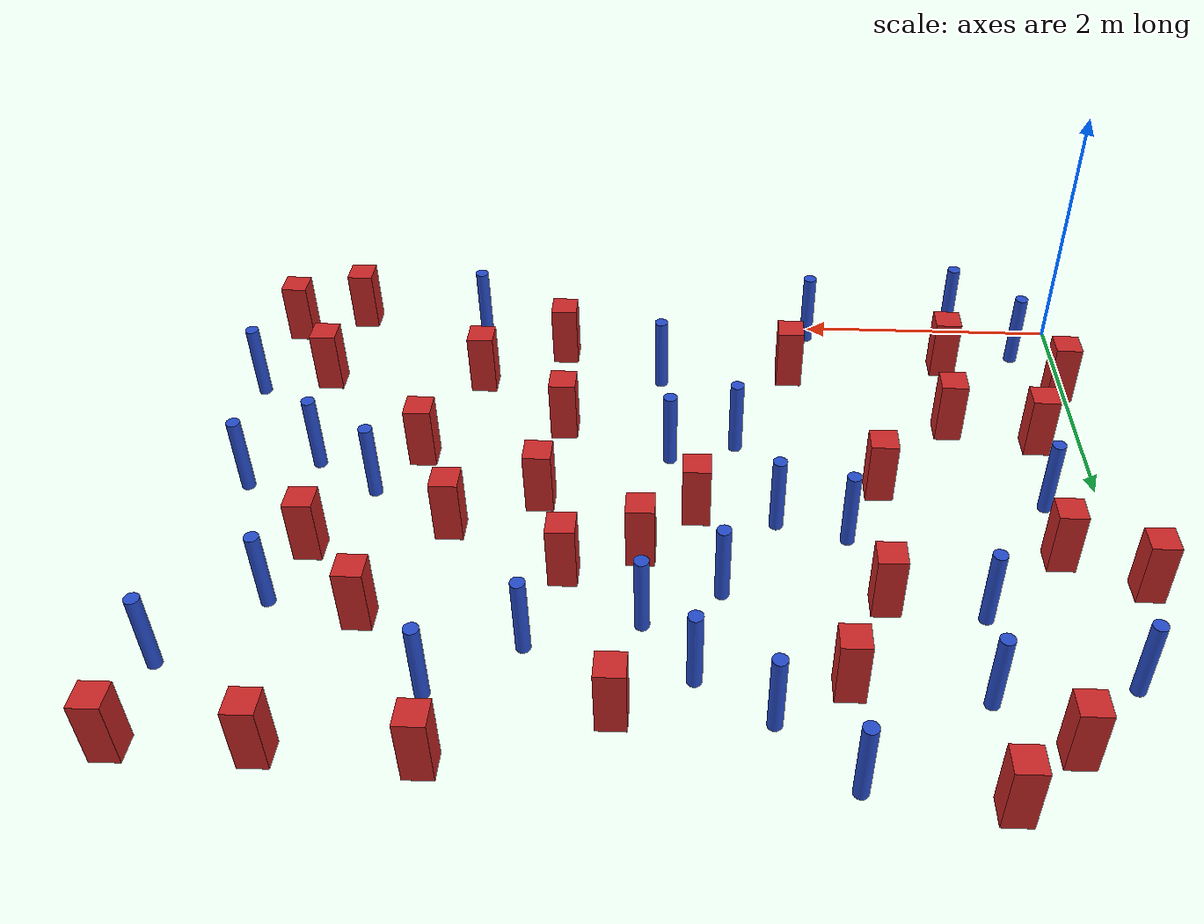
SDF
<sdf version="1.6">
 <model name="dense_46">
  <model name="pole_obstacle5">
   <static>true</static>
   <pose>4.59534983263 4.0228984966 7.38925637345e-09 -8.47170692797e-08 1.24976764805e-08 -1.74513093031e-07</pose>
   <link name="link">
    <pose>0 0 0.3 0 -0 0</pose>
    <inertial>
     <mass>1</mass>
     <inertia><ixx>0.145833</ixx><ixy>0</ixy><ixz>0</ixz><iyy>0.145833</iyy><iyz>0</iyz><izz>0.125</izz></inertia>
    </inertial>
    <collision name="collision">
     <geometry><cylinder><radius>0.05</radius><length>.6</length></cylinder></geometry>
    </collision>
    <visual name="visual">
     <geometry><cylinder><radius>0.05</radius><length>.6</length></cylinder></geometry>
     <material>
      <script><name>Gazebo/Blue</name><uri>file://media/materials/scripts/gazebo.material</uri></script>
     </material>
    </visual>
   </link>
  </model>
  <model name="square_post_obstacle12">
   <static>true</static>
   <pose>1.9486642513 3.89404540649 1.91545236811e-07 -7.35059704564e-06 1.12565212e-07 2.39332434364e-05</pose>
   <link name="link">
    <pose>0 0 0.25 0 -0 0</pose>
    <inertial>
     <mass>100</mass>
     <inertia>
      <ixx>0.166667</ixx>
      <ixy>0</ixy>
      <ixz>0</ixz>
      <iyy>0.166667</iyy>
      <iyz>0</iyz>
      <izz>0.166667</izz>
     </inertia>
    </inertial>
    <collision name="collision"><geometry><box><size>.2 .2 .5</size></box></geometry></collision>
    <visual name="visual">
     <geometry><box><size>.2 .2 .5</size></box></geometry>
     <material>
      <script><name>Gazebo/Red</name><uri>file://media/materials/scripts/gazebo.material</uri></script>
     </material>
    </visual>
   </link>
  </model>
  <model name="square_post_obstacle17">
   <static>true</static>
   <pose>5.48721667953 4.50802966469 1.91545236811e-07 -7.35059704564e-06 1.12565212e-07 2.39332434364e-05</pose>
   <link name="link">
    <pose>0 0 0.25 0 -0 0</pose>
    <inertial>
     <mass>100</mass>
     <inertia>
      <ixx>0.166667</ixx>
      <ixy>0</ixy>
      <ixz>0</ixz>
      <iyy>0.166667</iyy>
      <iyz>0</iyz>
      <izz>0.166667</izz>
     </inertia>
    </inertial>
    <collision name="collision"><geometry><box><size>.2 .2 .5</size></box></geometry></collision>
    <visual name="visual">
     <geometry><box><size>.2 .2 .5</size></box></geometry>
     <material>
      <script><name>Gazebo/Red</name><uri>file://media/materials/scripts/gazebo.material</uri></script>
     </material>
    </visual>
   </link>
  </model>
  <model name="square_post_obstacle18">
   <static>true</static>
   <pose>4.50338744561 4.55315479538 1.91545236811e-07 -7.35059704564e-06 1.12565212e-07 2.39332434364e-05</pose>
   <link name="link">
    <pose>0 0 0.25 0 -0 0</pose>
    <inertial>
     <mass>100</mass>
     <inertia>
      <ixx>0.166667</ixx>
      <ixy>0</ixy>
      <ixz>0</ixz>
      <iyy>0.166667</iyy>
      <iyz>0</iyz>
      <izz>0.166667</izz>
     </inertia>
    </inertial>
    <collision name="collision"><geometry><box><size>.2 .2 .5</size></box></geometry></collision>
    <visual name="visual">
     <geometry><box><size>.2 .2 .5</size></box></geometry>
     <material>
      <script><name>Gazebo/Red</name><uri>file://media/materials/scripts/gazebo.material</uri></script>
     </material>
    </visual>
   </link>
  </model>
  <model name="square_post_obstacle35">
   <static>true</static>
   <pose>0.418649851266 2.72194955402 1.91545236811e-07 -7.35059704564e-06 1.12565212e-07 2.39332434364e-05</pose>
   <link name="link">
    <pose>0 0 0.25 0 -0 0</pose>
    <inertial>
     <mass>100</mass>
     <inertia>
      <ixx>0.166667</ixx>
      <ixy>0</ixy>
      <ixz>0</ixz>
      <iyy>0.166667</iyy>
      <iyz>0</iyz>
      <izz>0.166667</izz>
     </inertia>
    </inertial>
    <collision name="collision"><geometry><box><size>.2 .2 .5</size></box></geometry></collision>
    <visual name="visual">
     <geometry><box><size>.2 .2 .5</size></box></geometry>
     <material>
      <script><name>Gazebo/Red</name><uri>file://media/materials/scripts/gazebo.material</uri></script>
     </material>
    </visual>
   </link>
  </model>
  <model name="pole_obstacle34">
   <static>true</static>
   <pose>0.150805727323 3.83194748476 7.38925637345e-09 -8.47170692792e-08 1.24976764391e-08 -1.74513093041e-07</pose>
   <link name="link">
    <pose>0 0 0.3 0 -0 0</pose>
    <inertial>
     <mass>1</mass>
     <inertia><ixx>0.145833</ixx><ixy>0</ixy><ixz>0</ixz><iyy>0.145833</iyy><iyz>0</iyz><izz>0.125</izz></inertia>
    </inertial>
    <collision name="collision">
     <geometry><cylinder><radius>0.05</radius><length>.6</length></cylinder></geometry>
    </collision>
    <visual name="visual">
     <geometry><cylinder><radius>0.05</radius><length>.6</length></cylinder></geometry>
     <material>
      <script><name>Gazebo/Blue</name><uri>file://media/materials/scripts/gazebo.material</uri></script>
     </material>
    </visual>
   </link>
  </model>
  <model name="pole_obstacle44">
   <static>true</static>
   <pose>2.02675476743 0.130925914596 7.38925637345e-09 -8.471706928e-08 1.2497676515e-08 -1.74513093013e-07</pose>
   <link name="link">
    <pose>0 0 0.3 0 -0 0</pose>
    <inertial>
     <mass>1</mass>
     <inertia><ixx>0.145833</ixx><ixy>0</ixy><ixz>0</ixz><iyy>0.145833</iyy><iyz>0</iyz><izz>0.125</izz></inertia>
    </inertial>
    <collision name="collision">
     <geometry><cylinder><radius>0.05</radius><length>.6</length></cylinder></geometry>
    </collision>
    <visual name="visual">
     <geometry><cylinder><radius>0.05</radius><length>.6</length></cylinder></geometry>
     <material>
      <script><name>Gazebo/Blue</name><uri>file://media/materials/scripts/gazebo.material</uri></script>
     </material>
    </visual>
   </link>
  </model>
  <model name="square_post_obstacle46">
   <static>true</static>
   <pose>0.0517861486975 0.834442177114 1.91545236811e-07 -7.35059704564e-06 1.12565212e-07 2.39332434364e-05</pose>
   <link name="link">
    <pose>0 0 0.25 0 -0 0</pose>
    <inertial>
     <mass>100</mass>
     <inertia>
      <ixx>0.166667</ixx>
      <ixy>0</ixy>
      <ixz>0</ixz>
      <iyy>0.166667</iyy>
      <iyz>0</iyz>
      <izz>0.166667</izz>
     </inertia>
    </inertial>
    <collision name="collision"><geometry><box><size>.2 .2 .5</size></box></geometry></collision>
    <visual name="visual">
     <geometry><box><size>.2 .2 .5</size></box></geometry>
     <material>
      <script><name>Gazebo/Red</name><uri>file://media/materials/scripts/gazebo.material</uri></script>
     </material>
    </visual>
   </link>
  </model>
  <model name="square_post_obstacle51">
   <static>true</static>
   <pose>1.59730750345 2.04922102669 1.91545236811e-07 -7.35059704564e-06 1.12565212e-07 2.39332434364e-05</pose>
   <link name="link">
    <pose>0 0 0.25 0 -0 0</pose>
    <inertial>
     <mass>100</mass>
     <inertia>
      <ixx>0.166667</ixx>
      <ixy>0</ixy>
      <ixz>0</ixz>
      <iyy>0.166667</iyy>
      <iyz>0</iyz>
      <izz>0.166667</izz>
     </inertia>
    </inertial>
    <collision name="collision"><geometry><box><size>.2 .2 .5</size></box></geometry></collision>
    <visual name="visual">
     <geometry><box><size>.2 .2 .5</size></box></geometry>
     <material>
      <script><name>Gazebo/Red</name><uri>file://media/materials/scripts/gazebo.material</uri></script>
     </material>
    </visual>
   </link>
  </model>
  <model name="square_post_obstacle52">
   <static>true</static>
   <pose>1.00465909613 1.33921879013 1.91545236811e-07 -7.35059704564e-06 1.12565212e-07 2.39332434364e-05</pose>
   <link name="link">
    <pose>0 0 0.25 0 -0 0</pose>
    <inertial>
     <mass>100</mass>
     <inertia>
      <ixx>0.166667</ixx>
      <ixy>0</ixy>
      <ixz>0</ixz>
      <iyy>0.166667</iyy>
      <iyz>0</iyz>
      <izz>0.166667</izz>
     </inertia>
    </inertial>
    <collision name="collision"><geometry><box><size>.2 .2 .5</size></box></geometry></collision>
    <visual name="visual">
     <geometry><box><size>.2 .2 .5</size></box></geometry>
     <material>
      <script><name>Gazebo/Red</name><uri>file://media/materials/scripts/gazebo.material</uri></script>
     </material>
    </visual>
   </link>
  </model>
  <model name="pole_obstacle54">
   <static>true</static>
   <pose>2.73887575974 3.12009232815 7.38925637345e-09 -8.47170692798e-08 1.24976764939e-08 -1.74513093025e-07</pose>
   <link name="link">
    <pose>0 0 0.3 0 -0 0</pose>
    <inertial>
     <mass>1</mass>
     <inertia><ixx>0.145833</ixx><ixy>0</ixy><ixz>0</ixz><iyy>0.145833</iyy><iyz>0</iyz><izz>0.125</izz></inertia>
    </inertial>
    <collision name="collision">
     <geometry><cylinder><radius>0.05</radius><length>.6</length></cylinder></geometry>
    </collision>
    <visual name="visual">
     <geometry><cylinder><radius>0.05</radius><length>.6</length></cylinder></geometry>
     <material>
      <script><name>Gazebo/Blue</name><uri>file://media/materials/scripts/gazebo.material</uri></script>
     </material>
    </visual>
   </link>
  </model>
  <model name="square_post_obstacle69">
   <static>true</static>
   <pose>1.07616729477 4.73868065113 1.91545236811e-07 -7.35059704564e-06 1.12565212e-07 2.39332434364e-05</pose>
   <link name="link">
    <pose>0 0 0.25 0 -0 0</pose>
    <inertial>
     <mass>100</mass>
     <inertia>
      <ixx>0.166667</ixx>
      <ixy>0</ixy>
      <ixz>0</ixz>
      <iyy>0.166667</iyy>
      <iyz>0</iyz>
      <izz>0.166667</izz>
     </inertia>
    </inertial>
    <collision name="collision"><geometry><box><size>.2 .2 .5</size></box></geometry></collision>
    <visual name="visual">
     <geometry><box><size>.2 .2 .5</size></box></geometry>
     <material>
      <script><name>Gazebo/Red</name><uri>file://media/materials/scripts/gazebo.material</uri></script>
     </material>
    </visual>
   </link>
  </model>
  <model name="pole_obstacle74">
   <static>true</static>
   <pose>3.25864597976 3.4138214126 7.38925637345e-09 -8.47170692798e-08 1.24976764939e-08 -1.74513093025e-07</pose>
   <link name="link">
    <pose>0 0 0.3 0 -0 0</pose>
    <inertial>
     <mass>1</mass>
     <inertia><ixx>0.145833</ixx><ixy>0</ixy><ixz>0</ixz><iyy>0.145833</iyy><iyz>0</iyz><izz>0.125</izz></inertia>
    </inertial>
    <collision name="collision">
     <geometry><cylinder><radius>0.05</radius><length>.6</length></cylinder></geometry>
    </collision>
    <visual name="visual">
     <geometry><cylinder><radius>0.05</radius><length>.6</length></cylinder></geometry>
     <material>
      <script><name>Gazebo/Blue</name><uri>file://media/materials/scripts/gazebo.material</uri></script>
     </material>
    </visual>
   </link>
  </model>
  <model name="pole_obstacle83">
   <static>true</static>
   <pose>4.7419789741 0.147731783757 7.38925637345e-09 -8.47170692801e-08 1.24976765186e-08 -1.74513093012e-07</pose>
   <link name="link">
    <pose>0 0 0.3 0 -0 0</pose>
    <inertial>
     <mass>1</mass>
     <inertia><ixx>0.145833</ixx><ixy>0</ixy><ixz>0</ixz><iyy>0.145833</iyy><iyz>0</iyz><izz>0.125</izz></inertia>
    </inertial>
    <collision name="collision">
     <geometry><cylinder><radius>0.05</radius><length>.6</length></cylinder></geometry>
    </collision>
    <visual name="visual">
     <geometry><cylinder><radius>0.05</radius><length>.6</length></cylinder></geometry>
     <material>
      <script><name>Gazebo/Blue</name><uri>file://media/materials/scripts/gazebo.material</uri></script>
     </material>
    </visual>
   </link>
  </model>
  <model name="pole_obstacle87">
   <static>true</static>
   <pose>1.85846566971 2.57275079863 7.38925637345e-09 -8.47170692799e-08 1.24976765053e-08 -1.74513093017e-07</pose>
   <link name="link">
    <pose>0 0 0.3 0 -0 0</pose>
    <inertial>
     <mass>1</mass>
     <inertia><ixx>0.145833</ixx><ixy>0</ixy><ixz>0</ixz><iyy>0.145833</iyy><iyz>0</iyz><izz>0.125</izz></inertia>
    </inertial>
    <collision name="collision">
     <geometry><cylinder><radius>0.05</radius><length>.6</length></cylinder></geometry>
    </collision>
    <visual name="visual">
     <geometry><cylinder><radius>0.05</radius><length>.6</length></cylinder></geometry>
     <material>
      <script><name>Gazebo/Blue</name><uri>file://media/materials/scripts/gazebo.material</uri></script>
     </material>
    </visual>
   </link>
  </model>
  <model name="pole_obstacle93">
   <static>true</static>
   <pose>0.409562089212 2.18612553428 7.38925637345e-09 -8.471706928e-08 1.24976765084e-08 -1.74513093017e-07</pose>
   <link name="link">
    <pose>0 0 0.3 0 -0 0</pose>
    <inertial>
     <mass>1</mass>
     <inertia><ixx>0.145833</ixx><ixy>0</ixy><ixz>0</ixz><iyy>0.145833</iyy><iyz>0</iyz><izz>0.125</izz></inertia>
    </inertial>
    <collision name="collision">
     <geometry><cylinder><radius>0.05</radius><length>.6</length></cylinder></geometry>
    </collision>
    <visual name="visual">
     <geometry><cylinder><radius>0.05</radius><length>.6</length></cylinder></geometry>
     <material>
      <script><name>Gazebo/Blue</name><uri>file://media/materials/scripts/gazebo.material</uri></script>
     </material>
    </visual>
   </link>
  </model>
  <model name="pole_obstacle95">
   <static>true</static>
   <pose>0.822893340495 -0.054897305519 7.38925637345e-09 -8.471706928e-08 1.24976765141e-08 -1.74513093012e-07</pose>
   <link name="link">
    <pose>0 0 0.3 0 -0 0</pose>
    <inertial>
     <mass>1</mass>
     <inertia><ixx>0.145833</ixx><ixy>0</ixy><ixz>0</ixz><iyy>0.145833</iyy><iyz>0</iyz><izz>0.125</izz></inertia>
    </inertial>
    <collision name="collision">
     <geometry><cylinder><radius>0.05</radius><length>.6</length></cylinder></geometry>
    </collision>
    <visual name="visual">
     <geometry><cylinder><radius>0.05</radius><length>.6</length></cylinder></geometry>
     <material>
      <script><name>Gazebo/Blue</name><uri>file://media/materials/scripts/gazebo.material</uri></script>
     </material>
    </visual>
   </link>
  </model>
  <model name="square_post_obstacle92">
   <static>true</static>
   <pose>5.8972531947 0.875745982359 1.91545236811e-07 -7.35059704564e-06 1.12565212e-07 2.39332434364e-05</pose>
   <link name="link">
    <pose>0 0 0.25 0 -0 0</pose>
    <inertial>
     <mass>100</mass>
     <inertia>
      <ixx>0.166667</ixx>
      <ixy>0</ixy>
      <ixz>0</ixz>
      <iyy>0.166667</iyy>
      <iyz>0</iyz>
      <izz>0.166667</izz>
     </inertia>
    </inertial>
    <collision name="collision"><geometry><box><size>.2 .2 .5</size></box></geometry></collision>
    <visual name="visual">
     <geometry><box><size>.2 .2 .5</size></box></geometry>
     <material>
      <script><name>Gazebo/Red</name><uri>file://media/materials/scripts/gazebo.material</uri></script>
     </material>
    </visual>
   </link>
  </model>
  <model name="pole_obstacle107">
   <static>true</static>
   <pose>1.93582935623 4.63736850619 7.38925637345e-09 -8.47170692799e-08 1.24976765033e-08 -1.74513093018e-07</pose>
   <link name="link">
    <pose>0 0 0.3 0 -0 0</pose>
    <inertial>
     <mass>1</mass>
     <inertia><ixx>0.145833</ixx><ixy>0</ixy><ixz>0</ixz><iyy>0.145833</iyy><iyz>0</iyz><izz>0.125</izz></inertia>
    </inertial>
    <collision name="collision">
     <geometry><cylinder><radius>0.05</radius><length>.6</length></cylinder></geometry>
    </collision>
    <visual name="visual">
     <geometry><cylinder><radius>0.05</radius><length>.6</length></cylinder></geometry>
     <material>
      <script><name>Gazebo/Blue</name><uri>file://media/materials/scripts/gazebo.material</uri></script>
     </material>
    </visual>
   </link>
  </model>
  <model name="pole_obstacle108">
   <static>true</static>
   <pose>6.33394868923 3.84851165685 7.38925637345e-09 -8.47170692798e-08 1.24976764937e-08 -1.74513093023e-07</pose>
   <link name="link">
    <pose>0 0 0.3 0 -0 0</pose>
    <inertial>
     <mass>1</mass>
     <inertia><ixx>0.145833</ixx><ixy>0</ixy><ixz>0</ixz><iyy>0.145833</iyy><iyz>0</iyz><izz>0.125</izz></inertia>
    </inertial>
    <collision name="collision">
     <geometry><cylinder><radius>0.05</radius><length>.6</length></cylinder></geometry>
    </collision>
    <visual name="visual">
     <geometry><cylinder><radius>0.05</radius><length>.6</length></cylinder></geometry>
     <material>
      <script><name>Gazebo/Blue</name><uri>file://media/materials/scripts/gazebo.material</uri></script>
     </material>
    </visual>
   </link>
  </model>
  <model name="square_post_obstacle97">
   <static>true</static>
   <pose>3.40601405111 4.16479973151 1.91545236811e-07 -7.35059704564e-06 1.12565212e-07 2.39332434364e-05</pose>
   <link name="link">
    <pose>0 0 0.25 0 -0 0</pose>
    <inertial>
     <mass>100</mass>
     <inertia>
      <ixx>0.166667</ixx>
      <ixy>0</ixy>
      <ixz>0</ixz>
      <iyy>0.166667</iyy>
      <iyz>0</iyz>
      <izz>0.166667</izz>
     </inertia>
    </inertial>
    <collision name="collision"><geometry><box><size>.2 .2 .5</size></box></geometry></collision>
    <visual name="visual">
     <geometry><box><size>.2 .2 .5</size></box></geometry>
     <material>
      <script><name>Gazebo/Red</name><uri>file://media/materials/scripts/gazebo.material</uri></script>
     </material>
    </visual>
   </link>
  </model>
  <model name="square_post_obstacle102">
   <static>true</static>
   <pose>-0.11619873784 2.98727127344 1.91545236811e-07 -7.35059704564e-06 1.12565212e-07 2.39332434364e-05</pose>
   <link name="link">
    <pose>0 0 0.25 0 -0 0</pose>
    <inertial>
     <mass>100</mass>
     <inertia>
      <ixx>0.166667</ixx>
      <ixy>0</ixy>
      <ixz>0</ixz>
      <iyy>0.166667</iyy>
      <iyz>0</iyz>
      <izz>0.166667</izz>
     </inertia>
    </inertial>
    <collision name="collision"><geometry><box><size>.2 .2 .5</size></box></geometry></collision>
    <visual name="visual">
     <geometry><box><size>.2 .2 .5</size></box></geometry>
     <material>
      <script><name>Gazebo/Red</name><uri>file://media/materials/scripts/gazebo.material</uri></script>
     </material>
    </visual>
   </link>
  </model>
  <model name="pole_obstacle118">
   <static>true</static>
   <pose>3.22946974129 0.804600885479 7.38925637345e-09 -8.471706928e-08 1.24976765177e-08 -1.74513093012e-07</pose>
   <link name="link">
    <pose>0 0 0.3 0 -0 0</pose>
    <inertial>
     <mass>1</mass>
     <inertia><ixx>0.145833</ixx><ixy>0</ixy><ixz>0</ixz><iyy>0.145833</iyy><iyz>0</iyz><izz>0.125</izz></inertia>
    </inertial>
    <collision name="collision">
     <geometry><cylinder><radius>0.05</radius><length>.6</length></cylinder></geometry>
    </collision>
    <visual name="visual">
     <geometry><cylinder><radius>0.05</radius><length>.6</length></cylinder></geometry>
     <material>
      <script><name>Gazebo/Blue</name><uri>file://media/materials/scripts/gazebo.material</uri></script>
     </material>
    </visual>
   </link>
  </model>
  <model name="square_post_obstacle106">
   <static>true</static>
   <pose>4.04915722472 2.25567903911 1.91545236811e-07 -7.35059704564e-06 1.12565212e-07 2.39332434364e-05</pose>
   <link name="link">
    <pose>0 0 0.25 0 -0 0</pose>
    <inertial>
     <mass>100</mass>
     <inertia>
      <ixx>0.166667</ixx>
      <ixy>0</ixy>
      <ixz>0</ixz>
      <iyy>0.166667</iyy>
      <iyz>0</iyz>
      <izz>0.166667</izz>
     </inertia>
    </inertial>
    <collision name="collision"><geometry><box><size>.2 .2 .5</size></box></geometry></collision>
    <visual name="visual">
     <geometry><box><size>.2 .2 .5</size></box></geometry>
     <material>
      <script><name>Gazebo/Red</name><uri>file://media/materials/scripts/gazebo.material</uri></script>
     </material>
    </visual>
   </link>
  </model>
  <model name="square_post_obstacle112">
   <static>true</static>
   <pose>0.940830096935 0.526703319164 1.91545236811e-07 -7.35059704564e-06 1.12565212e-07 2.39332434364e-05</pose>
   <link name="link">
    <pose>0 0 0.25 0 -0 0</pose>
    <inertial>
     <mass>100</mass>
     <inertia>
      <ixx>0.166667</ixx>
      <ixy>0</ixy>
      <ixz>0</ixz>
      <iyy>0.166667</iyy>
      <iyz>0</iyz>
      <izz>0.166667</izz>
     </inertia>
    </inertial>
    <collision name="collision"><geometry><box><size>.2 .2 .5</size></box></geometry></collision>
    <visual name="visual">
     <geometry><box><size>.2 .2 .5</size></box></geometry>
     <material>
      <script><name>Gazebo/Red</name><uri>file://media/materials/scripts/gazebo.material</uri></script>
     </material>
    </visual>
   </link>
  </model>
  <model name="square_post_obstacle114">
   <static>true</static>
   <pose>2.9229751349 2.36016339598 1.91545236811e-07 -7.35059704564e-06 1.12565212e-07 2.39332434364e-05</pose>
   <link name="link">
    <pose>0 0 0.25 0 -0 0</pose>
    <inertial>
     <mass>100</mass>
     <inertia>
      <ixx>0.166667</ixx>
      <ixy>0</ixy>
      <ixz>0</ixz>
      <iyy>0.166667</iyy>
      <iyz>0</iyz>
      <izz>0.166667</izz>
     </inertia>
    </inertial>
    <collision name="collision"><geometry><box><size>.2 .2 .5</size></box></geometry></collision>
    <visual name="visual">
     <geometry><box><size>.2 .2 .5</size></box></geometry>
     <material>
      <script><name>Gazebo/Red</name><uri>file://media/materials/scripts/gazebo.material</uri></script>
     </material>
    </visual>
   </link>
  </model>
  <model name="square_post_obstacle119">
   <static>true</static>
   <pose>4.65369916464 2.56672874274 1.91545236811e-07 -7.35059704564e-06 1.12565212e-07 2.39332434364e-05</pose>
   <link name="link">
    <pose>0 0 0.25 0 -0 0</pose>
    <inertial>
     <mass>100</mass>
     <inertia>
      <ixx>0.166667</ixx>
      <ixy>0</ixy>
      <ixz>0</ixz>
      <iyy>0.166667</iyy>
      <iyz>0</iyz>
      <izz>0.166667</izz>
     </inertia>
    </inertial>
    <collision name="collision"><geometry><box><size>.2 .2 .5</size></box></geometry></collision>
    <visual name="visual">
     <geometry><box><size>.2 .2 .5</size></box></geometry>
     <material>
      <script><name>Gazebo/Red</name><uri>file://media/materials/scripts/gazebo.material</uri></script>
     </material>
    </visual>
   </link>
  </model>
  <model name="square_post_obstacle124">
   <static>true</static>
   <pose>2.20223118545 0.701143997711 1.91545236811e-07 -7.35059704564e-06 1.12565212e-07 2.39332434364e-05</pose>
   <link name="link">
    <pose>0 0 0.25 0 -0 0</pose>
    <inertial>
     <mass>100</mass>
     <inertia>
      <ixx>0.166667</ixx>
      <ixy>0</ixy>
      <ixz>0</ixz>
      <iyy>0.166667</iyy>
      <iyz>0</iyz>
      <izz>0.166667</izz>
     </inertia>
    </inertial>
    <collision name="collision"><geometry><box><size>.2 .2 .5</size></box></geometry></collision>
    <visual name="visual">
     <geometry><box><size>.2 .2 .5</size></box></geometry>
     <material>
      <script><name>Gazebo/Red</name><uri>file://media/materials/scripts/gazebo.material</uri></script>
     </material>
    </visual>
   </link>
  </model>
  <model name="square_post_obstacle125">
   <static>true</static>
   <pose>3.29780537342 2.77564226505 1.91545236811e-07 -7.35059704564e-06 1.12565212e-07 2.39332434364e-05</pose>
   <link name="link">
    <pose>0 0 0.25 0 -0 0</pose>
    <inertial>
     <mass>100</mass>
     <inertia>
      <ixx>0.166667</ixx>
      <ixy>0</ixy>
      <ixz>0</ixz>
      <iyy>0.166667</iyy>
      <iyz>0</iyz>
      <izz>0.166667</izz>
     </inertia>
    </inertial>
    <collision name="collision"><geometry><box><size>.2 .2 .5</size></box></geometry></collision>
    <visual name="visual">
     <geometry><box><size>.2 .2 .5</size></box></geometry>
     <material>
      <script><name>Gazebo/Red</name><uri>file://media/materials/scripts/gazebo.material</uri></script>
     </material>
    </visual>
   </link>
  </model>
  <model name="square_post_obstacle126">
   <static>true</static>
   <pose>4.97991618646 1.78618532741 1.91545236811e-07 -7.35059704564e-06 1.12565212e-07 2.39332434364e-05</pose>
   <link name="link">
    <pose>0 0 0.25 0 -0 0</pose>
    <inertial>
     <mass>100</mass>
     <inertia>
      <ixx>0.166667</ixx>
      <ixy>0</ixy>
      <ixz>0</ixz>
      <iyy>0.166667</iyy>
      <iyz>0</iyz>
      <izz>0.166667</izz>
     </inertia>
    </inertial>
    <collision name="collision"><geometry><box><size>.2 .2 .5</size></box></geometry></collision>
    <visual name="visual">
     <geometry><box><size>.2 .2 .5</size></box></geometry>
     <material>
      <script><name>Gazebo/Red</name><uri>file://media/materials/scripts/gazebo.material</uri></script>
     </material>
    </visual>
   </link>
  </model>
  <model name="pole_obstacle145">
   <static>true</static>
   <pose>1.07596527728 3.97298461516 7.38925637345e-09 -8.47170692799e-08 1.24976765077e-08 -1.74513093019e-07</pose>
   <link name="link">
    <pose>0 0 0.3 0 -0 0</pose>
    <inertial>
     <mass>1</mass>
     <inertia><ixx>0.145833</ixx><ixy>0</ixy><ixz>0</ixz><iyy>0.145833</iyy><iyz>0</iyz><izz>0.125</izz></inertia>
    </inertial>
    <collision name="collision">
     <geometry><cylinder><radius>0.05</radius><length>.6</length></cylinder></geometry>
    </collision>
    <visual name="visual">
     <geometry><cylinder><radius>0.05</radius><length>.6</length></cylinder></geometry>
     <material>
      <script><name>Gazebo/Blue</name><uri>file://media/materials/scripts/gazebo.material</uri></script>
     </material>
    </visual>
   </link>
  </model>
  <model name="square_post_obstacle137">
   <static>true</static>
   <pose>5.5967975614 2.80122132989 1.91545236811e-07 -7.35059704564e-06 1.12565212e-07 2.39332434364e-05</pose>
   <link name="link">
    <pose>0 0 0.25 0 -0 0</pose>
    <inertial>
     <mass>100</mass>
     <inertia>
      <ixx>0.166667</ixx>
      <ixy>0</ixy>
      <ixz>0</ixz>
      <iyy>0.166667</iyy>
      <iyz>0</iyz>
      <izz>0.166667</izz>
     </inertia>
    </inertial>
    <collision name="collision"><geometry><box><size>.2 .2 .5</size></box></geometry></collision>
    <visual name="visual">
     <geometry><box><size>.2 .2 .5</size></box></geometry>
     <material>
      <script><name>Gazebo/Red</name><uri>file://media/materials/scripts/gazebo.material</uri></script>
     </material>
    </visual>
   </link>
  </model>
  <model name="square_post_obstacle143">
   <static>true</static>
   <pose>3.81365416403 2.98487274988 1.91545236811e-07 -7.35059704564e-06 1.12565212e-07 2.39332434364e-05</pose>
   <link name="link">
    <pose>0 0 0.25 0 -0 0</pose>
    <inertial>
     <mass>100</mass>
     <inertia>
      <ixx>0.166667</ixx>
      <ixy>0</ixy>
      <ixz>0</ixz>
      <iyy>0.166667</iyy>
      <iyz>0</iyz>
      <izz>0.166667</izz>
     </inertia>
    </inertial>
    <collision name="collision"><geometry><box><size>.2 .2 .5</size></box></geometry></collision>
    <visual name="visual">
     <geometry><box><size>.2 .2 .5</size></box></geometry>
     <material>
      <script><name>Gazebo/Red</name><uri>file://media/materials/scripts/gazebo.material</uri></script>
     </material>
    </visual>
   </link>
  </model>
  <model name="square_post_obstacle146">
   <static>true</static>
   <pose>6.37122204208 4.49850939421 1.91545236811e-07 -7.35059704564e-06 1.12565212e-07 2.39332434364e-05</pose>
   <link name="link">
    <pose>0 0 0.25 0 -0 0</pose>
    <inertial>
     <mass>100</mass>
     <inertia>
      <ixx>0.166667</ixx>
      <ixy>0</ixy>
      <ixz>0</ixz>
      <iyy>0.166667</iyy>
      <iyz>0</iyz>
      <izz>0.166667</izz>
     </inertia>
    </inertial>
    <collision name="collision"><geometry><box><size>.2 .2 .5</size></box></geometry></collision>
    <visual name="visual">
     <geometry><box><size>.2 .2 .5</size></box></geometry>
     <material>
      <script><name>Gazebo/Red</name><uri>file://media/materials/scripts/gazebo.material</uri></script>
     </material>
    </visual>
   </link>
  </model>
  <model name="square_post_obstacle150">
   <static>true</static>
   <pose>3.95043258287 1.43204682193 1.91545236811e-07 -7.35059704564e-06 1.12565212e-07 2.39332434364e-05</pose>
   <link name="link">
    <pose>0 0 0.25 0 -0 0</pose>
    <inertial>
     <mass>100</mass>
     <inertia>
      <ixx>0.166667</ixx>
      <ixy>0</ixy>
      <ixz>0</ixz>
      <iyy>0.166667</iyy>
      <iyz>0</iyz>
      <izz>0.166667</izz>
     </inertia>
    </inertial>
    <collision name="collision"><geometry><box><size>.2 .2 .5</size></box></geometry></collision>
    <visual name="visual">
     <geometry><box><size>.2 .2 .5</size></box></geometry>
     <material>
      <script><name>Gazebo/Red</name><uri>file://media/materials/scripts/gazebo.material</uri></script>
     </material>
    </visual>
   </link>
  </model>
  <model name="pole_obstacle162">
   <static>true</static>
   <pose>5.75473876534 1.89596556359 7.38925637345e-09 -8.471706928e-08 1.24976765134e-08 -1.74513093015e-07</pose>
   <link name="link">
    <pose>0 0 0.3 0 -0 0</pose>
    <inertial>
     <mass>1</mass>
     <inertia><ixx>0.145833</ixx><ixy>0</ixy><ixz>0</ixz><iyy>0.145833</iyy><iyz>0</iyz><izz>0.125</izz></inertia>
    </inertial>
    <collision name="collision">
     <geometry><cylinder><radius>0.05</radius><length>.6</length></cylinder></geometry>
    </collision>
    <visual name="visual">
     <geometry><cylinder><radius>0.05</radius><length>.6</length></cylinder></geometry>
     <material>
      <script><name>Gazebo/Blue</name><uri>file://media/materials/scripts/gazebo.material</uri></script>
     </material>
    </visual>
   </link>
  </model>
  <model name="pole_obstacle163">
   <static>true</static>
   <pose>3.12862863542 1.75219059805 7.38925637345e-09 -8.471706928e-08 1.24976765152e-08 -1.74513093012e-07</pose>
   <link name="link">
    <pose>0 0 0.3 0 -0 0</pose>
    <inertial>
     <mass>1</mass>
     <inertia><ixx>0.145833</ixx><ixy>0</ixy><ixz>0</ixz><iyy>0.145833</iyy><iyz>0</iyz><izz>0.125</izz></inertia>
    </inertial>
    <collision name="collision">
     <geometry><cylinder><radius>0.05</radius><length>.6</length></cylinder></geometry>
    </collision>
    <visual name="visual">
     <geometry><cylinder><radius>0.05</radius><length>.6</length></cylinder></geometry>
     <material>
      <script><name>Gazebo/Blue</name><uri>file://media/materials/scripts/gazebo.material</uri></script>
     </material>
    </visual>
   </link>
  </model>
  <model name="pole_obstacle165">
   <static>true</static>
   <pose>2.4169144233 4.17674018811 7.38925637345e-09 -8.47170692798e-08 1.24976765033e-08 -1.74513093019e-07</pose>
   <link name="link">
    <pose>0 0 0.3 0 -0 0</pose>
    <inertial>
     <mass>1</mass>
     <inertia><ixx>0.145833</ixx><ixy>0</ixy><ixz>0</ixz><iyy>0.145833</iyy><iyz>0</iyz><izz>0.125</izz></inertia>
    </inertial>
    <collision name="collision">
     <geometry><cylinder><radius>0.05</radius><length>.6</length></cylinder></geometry>
    </collision>
    <visual name="visual">
     <geometry><cylinder><radius>0.05</radius><length>.6</length></cylinder></geometry>
     <material>
      <script><name>Gazebo/Blue</name><uri>file://media/materials/scripts/gazebo.material</uri></script>
     </material>
    </visual>
   </link>
  </model>
  <model name="pole_obstacle166">
   <static>true</static>
   <pose>6.2240301219 2.15953577675 7.38925637345e-09 -8.47170692798e-08 1.24976764937e-08 -1.74513093023e-07</pose>
   <link name="link">
    <pose>0 0 0.3 0 -0 0</pose>
    <inertial>
     <mass>1</mass>
     <inertia><ixx>0.145833</ixx><ixy>0</ixy><ixz>0</ixz><iyy>0.145833</iyy><iyz>0</iyz><izz>0.125</izz></inertia>
    </inertial>
    <collision name="collision">
     <geometry><cylinder><radius>0.05</radius><length>.6</length></cylinder></geometry>
    </collision>
    <visual name="visual">
     <geometry><cylinder><radius>0.05</radius><length>.6</length></cylinder></geometry>
     <material>
      <script><name>Gazebo/Blue</name><uri>file://media/materials/scripts/gazebo.material</uri></script>
     </material>
    </visual>
   </link>
  </model>
  <model name="pole_obstacle170">
   <static>true</static>
   <pose>0.340118219853 0.36920748037 7.38925637345e-09 -8.471706928e-08 1.24976765138e-08 -1.74513093013e-07</pose>
   <link name="link">
    <pose>0 0 0.3 0 -0 0</pose>
    <inertial>
     <mass>1</mass>
     <inertia><ixx>0.145833</ixx><ixy>0</ixy><ixz>0</ixz><iyy>0.145833</iyy><iyz>0</iyz><izz>0.125</izz></inertia>
    </inertial>
    <collision name="collision">
     <geometry><cylinder><radius>0.05</radius><length>.6</length></cylinder></geometry>
    </collision>
    <visual name="visual">
     <geometry><cylinder><radius>0.05</radius><length>.6</length></cylinder></geometry>
     <material>
      <script><name>Gazebo/Blue</name><uri>file://media/materials/scripts/gazebo.material</uri></script>
     </material>
    </visual>
   </link>
  </model>
  <model name="square_post_obstacle162">
   <static>true</static>
   <pose>4.02956686683 0.452294432995 1.91545236811e-07 -7.35059704564e-06 1.12565212e-07 2.39332434364e-05</pose>
   <link name="link">
    <pose>0 0 0.25 0 -0 0</pose>
    <inertial>
     <mass>100</mass>
     <inertia>
      <ixx>0.166667</ixx>
      <ixy>0</ixy>
      <ixz>0</ixz>
      <iyy>0.166667</iyy>
      <iyz>0</iyz>
      <izz>0.166667</izz>
     </inertia>
    </inertial>
    <collision name="collision"><geometry><box><size>.2 .2 .5</size></box></geometry></collision>
    <visual name="visual">
     <geometry><box><size>.2 .2 .5</size></box></geometry>
     <material>
      <script><name>Gazebo/Red</name><uri>file://media/materials/scripts/gazebo.material</uri></script>
     </material>
    </visual>
   </link>
  </model>
  <model name="square_post_obstacle164">
   <static>true</static>
   <pose>0.35385799683 1.49588667217 1.91545236811e-07 -7.35059704564e-06 1.12565212e-07 2.39332434364e-05</pose>
   <link name="link">
    <pose>0 0 0.25 0 -0 0</pose>
    <inertial>
     <mass>100</mass>
     <inertia>
      <ixx>0.166667</ixx>
      <ixy>0</ixy>
      <ixz>0</ixz>
      <iyy>0.166667</iyy>
      <iyz>0</iyz>
      <izz>0.166667</izz>
     </inertia>
    </inertial>
    <collision name="collision"><geometry><box><size>.2 .2 .5</size></box></geometry></collision>
    <visual name="visual">
     <geometry><box><size>.2 .2 .5</size></box></geometry>
     <material>
      <script><name>Gazebo/Red</name><uri>file://media/materials/scripts/gazebo.material</uri></script>
     </material>
    </visual>
   </link>
  </model>
  <model name="square_post_obstacle166">
   <static>true</static>
   <pose>4.6520328491 0.865738830574 1.91545236811e-07 -7.35059704564e-06 1.12565212e-07 2.39332434364e-05</pose>
   <link name="link">
    <pose>0 0 0.25 0 -0 0</pose>
    <inertial>
     <mass>100</mass>
     <inertia>
      <ixx>0.166667</ixx>
      <ixy>0</ixy>
      <ixz>0</ixz>
      <iyy>0.166667</iyy>
      <iyz>0</iyz>
      <izz>0.166667</izz>
     </inertia>
    </inertial>
    <collision name="collision"><geometry><box><size>.2 .2 .5</size></box></geometry></collision>
    <visual name="visual">
     <geometry><box><size>.2 .2 .5</size></box></geometry>
     <material>
      <script><name>Gazebo/Red</name><uri>file://media/materials/scripts/gazebo.material</uri></script>
     </material>
    </visual>
   </link>
  </model>
  <model name="square_post_obstacle173">
   <static>true</static>
   <pose>5.11604501277 3.42457435987 1.91545236811e-07 -7.35059704564e-06 1.12565212e-07 2.39332434364e-05</pose>
   <link name="link">
    <pose>0 0 0.25 0 -0 0</pose>
    <inertial>
     <mass>100</mass>
     <inertia>
      <ixx>0.166667</ixx>
      <ixy>0</ixy>
      <ixz>0</ixz>
      <iyy>0.166667</iyy>
      <iyz>0</iyz>
      <izz>0.166667</izz>
     </inertia>
    </inertial>
    <collision name="collision"><geometry><box><size>.2 .2 .5</size></box></geometry></collision>
    <visual name="visual">
     <geometry><box><size>.2 .2 .5</size></box></geometry>
     <material>
      <script><name>Gazebo/Red</name><uri>file://media/materials/scripts/gazebo.material</uri></script>
     </material>
    </visual>
   </link>
  </model>
  <model name="square_post_obstacle181">
   <static>true</static>
   <pose>5.79220055802 0.00360277084862 1.91545236811e-07 -7.35059704564e-06 1.12565212e-07 2.39332434364e-05</pose>
   <link name="link">
    <pose>0 0 0.25 0 -0 0</pose>
    <inertial>
     <mass>100</mass>
     <inertia>
      <ixx>0.166667</ixx>
      <ixy>0</ixy>
      <ixz>0</ixz>
      <iyy>0.166667</iyy>
      <iyz>0</iyz>
      <izz>0.166667</izz>
     </inertia>
    </inertial>
    <collision name="collision"><geometry><box><size>.2 .2 .5</size></box></geometry></collision>
    <visual name="visual">
     <geometry><box><size>.2 .2 .5</size></box></geometry>
     <material>
      <script><name>Gazebo/Red</name><uri>file://media/materials/scripts/gazebo.material</uri></script>
     </material>
    </visual>
   </link>
  </model>
  <model name="square_post_obstacle195">
   <static>true</static>
   <pose>6.2981004983 0.208083434495 1.91545236811e-07 -7.35059704564e-06 1.12565212e-07 2.39332434364e-05</pose>
   <link name="link">
    <pose>0 0 0.25 0 -0 0</pose>
    <inertial>
     <mass>100</mass>
     <inertia>
      <ixx>0.166667</ixx>
      <ixy>0</ixy>
      <ixz>0</ixz>
      <iyy>0.166667</iyy>
      <iyz>0</iyz>
      <izz>0.166667</izz>
     </inertia>
    </inertial>
    <collision name="collision"><geometry><box><size>.2 .2 .5</size></box></geometry></collision>
    <visual name="visual">
     <geometry><box><size>.2 .2 .5</size></box></geometry>
     <material>
      <script><name>Gazebo/Red</name><uri>file://media/materials/scripts/gazebo.material</uri></script>
     </material>
    </visual>
   </link>
  </model>
  <model name="square_post_obstacle196">
   <static>true</static>
   <pose>0.637919669569 4.34102443184 1.91545236811e-07 -7.35059704564e-06 1.12565212e-07 2.39332434364e-05</pose>
   <link name="link">
    <pose>0 0 0.25 0 -0 0</pose>
    <inertial>
     <mass>100</mass>
     <inertia>
      <ixx>0.166667</ixx>
      <ixy>0</ixy>
      <ixz>0</ixz>
      <iyy>0.166667</iyy>
      <iyz>0</iyz>
      <izz>0.166667</izz>
     </inertia>
    </inertial>
    <collision name="collision"><geometry><box><size>.2 .2 .5</size></box></geometry></collision>
    <visual name="visual">
     <geometry><box><size>.2 .2 .5</size></box></geometry>
     <material>
      <script><name>Gazebo/Red</name><uri>file://media/materials/scripts/gazebo.material</uri></script>
     </material>
    </visual>
   </link>
  </model>
  <model name="square_post_obstacle200">
   <static>true</static>
   <pose>1.6579136891 3.18275360737 1.91545236811e-07 -7.35059704564e-06 1.12565212e-07 2.39332434364e-05</pose>
   <link name="link">
    <pose>0 0 0.25 0 -0 0</pose>
    <inertial>
     <mass>100</mass>
     <inertia>
      <ixx>0.166667</ixx>
      <ixy>0</ixy>
      <ixz>0</ixz>
      <iyy>0.166667</iyy>
      <iyz>0</iyz>
      <izz>0.166667</izz>
     </inertia>
    </inertial>
    <collision name="collision"><geometry><box><size>.2 .2 .5</size></box></geometry></collision>
    <visual name="visual">
     <geometry><box><size>.2 .2 .5</size></box></geometry>
     <material>
      <script><name>Gazebo/Red</name><uri>file://media/materials/scripts/gazebo.material</uri></script>
     </material>
    </visual>
   </link>
  </model>
  <model name="pole_obstacle190">
   <static>true</static>
   <pose>5.7612110127 3.29549941021 7.38925637345e-09 -8.47170692798e-08 1.24976764937e-08 -1.74513093023e-07</pose>
   <link name="link">
    <pose>0 0 0.3 0 -0 0</pose>
    <inertial>
     <mass>1</mass>
     <inertia><ixx>0.145833</ixx><ixy>0</ixy><ixz>0</ixz><iyy>0.145833</iyy><iyz>0</iyz><izz>0.125</izz></inertia>
    </inertial>
    <collision name="collision">
     <geometry><cylinder><radius>0.05</radius><length>.6</length></cylinder></geometry>
    </collision>
    <visual name="visual">
     <geometry><cylinder><radius>0.05</radius><length>.6</length></cylinder></geometry>
     <material>
      <script><name>Gazebo/Blue</name><uri>file://media/materials/scripts/gazebo.material</uri></script>
     </material>
    </visual>
   </link>
  </model>
  <model name="pole_obstacle194">
   <static>true</static>
   <pose>0.999885356067 3.27692761729 7.38925637345e-09 -8.47170692799e-08 1.24976765046e-08 -1.74513093018e-07</pose>
   <link name="link">
    <pose>0 0 0.3 0 -0 0</pose>
    <inertial>
     <mass>1</mass>
     <inertia><ixx>0.145833</ixx><ixy>0</ixy><ixz>0</ixz><iyy>0.145833</iyy><iyz>0</iyz><izz>0.125</izz></inertia>
    </inertial>
    <collision name="collision">
     <geometry><cylinder><radius>0.05</radius><length>.6</length></cylinder></geometry>
    </collision>
    <visual name="visual">
     <geometry><cylinder><radius>0.05</radius><length>.6</length></cylinder></geometry>
     <material>
      <script><name>Gazebo/Blue</name><uri>file://media/materials/scripts/gazebo.material</uri></script>
     </material>
    </visual>
   </link>
  </model>
  <model name="pole_obstacle213">
   <static>true</static>
   <pose>6.41644000957 1.02647002078 7.38925637345e-09 -8.471706928e-08 1.24976765111e-08 -1.74513093015e-07</pose>
   <link name="link">
    <pose>0 0 0.3 0 -0 0</pose>
    <inertial>
     <mass>1</mass>
     <inertia><ixx>0.145833</ixx><ixy>0</ixy><ixz>0</ixz><iyy>0.145833</iyy><iyz>0</iyz><izz>0.125</izz></inertia>
    </inertial>
    <collision name="collision">
     <geometry><cylinder><radius>0.05</radius><length>.6</length></cylinder></geometry>
    </collision>
    <visual name="visual">
     <geometry><cylinder><radius>0.05</radius><length>.6</length></cylinder></geometry>
     <material>
      <script><name>Gazebo/Blue</name><uri>file://media/materials/scripts/gazebo.material</uri></script>
     </material>
    </visual>
   </link>
  </model>
  <model name="pole_obstacle214">
   <static>true</static>
   <pose>2.35400000957 2.43597002078 7.38925637345e-09 -8.47170692798e-08 1.24976764939e-08 -1.74513093025e-07</pose>
   <link name="link">
    <pose>0 0 0.3 0 -0 0</pose>
    <inertial>
     <mass>1</mass>
     <inertia><ixx>0.145833</ixx><ixy>0</ixy><ixz>0</ixz><iyy>0.145833</iyy><iyz>0</iyz><izz>0.125</izz></inertia>
    </inertial>
    <collision name="collision">
     <geometry><cylinder><radius>0.05</radius><length>.6</length></cylinder></geometry>
    </collision>
    <visual name="visual">
     <geometry><cylinder><radius>0.05</radius><length>.6</length></cylinder></geometry>
     <material>
      <script><name>Gazebo/Blue</name><uri>file://media/materials/scripts/gazebo.material</uri></script>
     </material>
    </visual>
   </link>
  </model>
  <model name="pole_obstacle215">
   <static>true</static>
   <pose>4.01254000957 3.62874002078 7.38925637345e-09 -8.47170692799e-08 1.24976765013e-08 -1.74513093021e-07</pose>
   <link name="link">
    <pose>0 0 0.3 0 -0 0</pose>
    <inertial>
     <mass>1</mass>
     <inertia><ixx>0.145833</ixx><ixy>0</ixy><ixz>0</ixz><iyy>0.145833</iyy><iyz>0</iyz><izz>0.125</izz></inertia>
    </inertial>
    <collision name="collision">
     <geometry><cylinder><radius>0.05</radius><length>.6</length></cylinder></geometry>
    </collision>
    <visual name="visual">
     <geometry><cylinder><radius>0.05</radius><length>.6</length></cylinder></geometry>
     <material>
      <script><name>Gazebo/Blue</name><uri>file://media/materials/scripts/gazebo.material</uri></script>
     </material>
    </visual>
   </link>
  </model>
  <model name="pole_obstacle227">
   <static>true</static>
   <pose>5.27244000957 2.19333002078 7.38925637345e-09 -8.47170692799e-08 1.24976765028e-08 -1.74513093019e-07</pose>
   <link name="link">
    <pose>0 0 0.3 0 -0 0</pose>
    <inertial>
     <mass>1</mass>
     <inertia><ixx>0.145833</ixx><ixy>0</ixy><ixz>0</ixz><iyy>0.145833</iyy><iyz>0</iyz><izz>0.125</izz></inertia>
    </inertial>
    <collision name="collision">
     <geometry><cylinder><radius>0.05</radius><length>.6</length></cylinder></geometry>
    </collision>
    <visual name="visual">
     <geometry><cylinder><radius>0.05</radius><length>.6</length></cylinder></geometry>
     <material>
      <script><name>Gazebo/Blue</name><uri>file://media/materials/scripts/gazebo.material</uri></script>
     </material>
    </visual>
   </link>
  </model>
  <model name="pole_obstacle228">
   <static>true</static>
   <pose>2.90969000957 3.86186002078 7.38925637345e-09 -8.471706928e-08 1.24976765098e-08 -1.74513093016e-07</pose>
   <link name="link">
    <pose>0 0 0.3 0 -0 0</pose>
    <inertial>
     <mass>1</mass>
     <inertia><ixx>0.145833</ixx><ixy>0</ixy><ixz>0</ixz><iyy>0.145833</iyy><iyz>0</iyz><izz>0.125</izz></inertia>
    </inertial>
    <collision name="collision">
     <geometry><cylinder><radius>0.05</radius><length>.6</length></cylinder></geometry>
    </collision>
    <visual name="visual">
     <geometry><cylinder><radius>0.05</radius><length>.6</length></cylinder></geometry>
     <material>
      <script><name>Gazebo/Blue</name><uri>file://media/materials/scripts/gazebo.material</uri></script>
     </material>
    </visual>
   </link>
  </model>
  <model name="pole_obstacle238">
   <static>true</static>
   <pose>2.63874000957 1.59302002078 7.38925637345e-09 -8.47170692796e-08 1.24976764713e-08 -1.74513093037e-07</pose>
   <link name="link">
    <pose>0 0 0.3 0 -0 0</pose>
    <inertial>
     <mass>1</mass>
     <inertia><ixx>0.145833</ixx><ixy>0</ixy><ixz>0</ixz><iyy>0.145833</iyy><iyz>0</iyz><izz>0.125</izz></inertia>
    </inertial>
    <collision name="collision">
     <geometry><cylinder><radius>0.05</radius><length>.6</length></cylinder></geometry>
    </collision>
    <visual name="visual">
     <geometry><cylinder><radius>0.05</radius><length>.6</length></cylinder></geometry>
     <material>
      <script><name>Gazebo/Blue</name><uri>file://media/materials/scripts/gazebo.material</uri></script>
     </material>
    </visual>
   </link>
  </model>
 </model>
</sdf>
